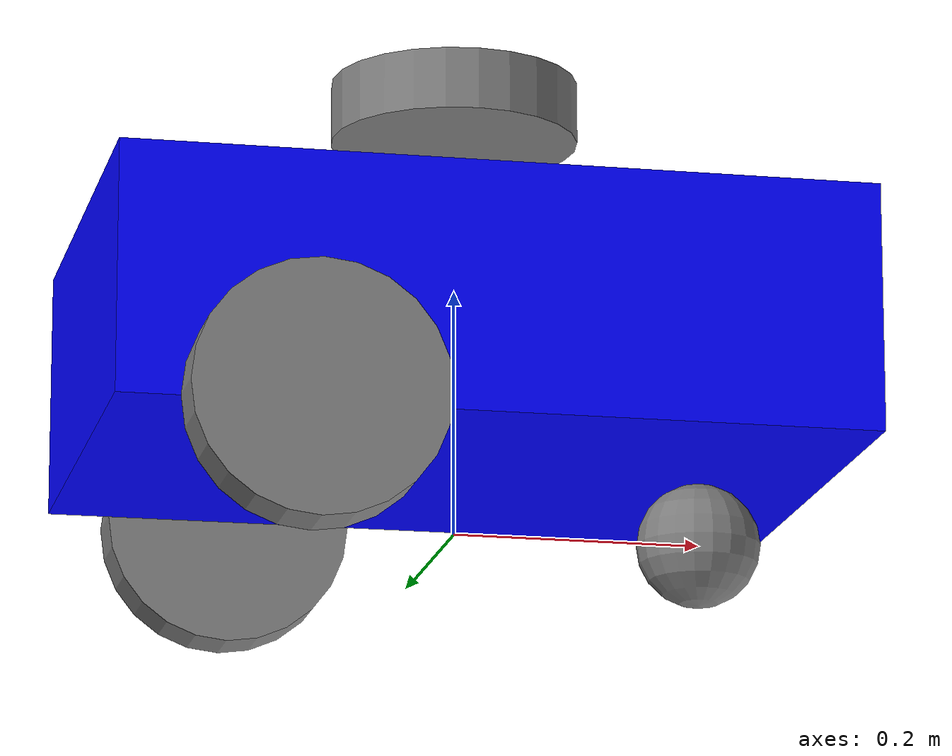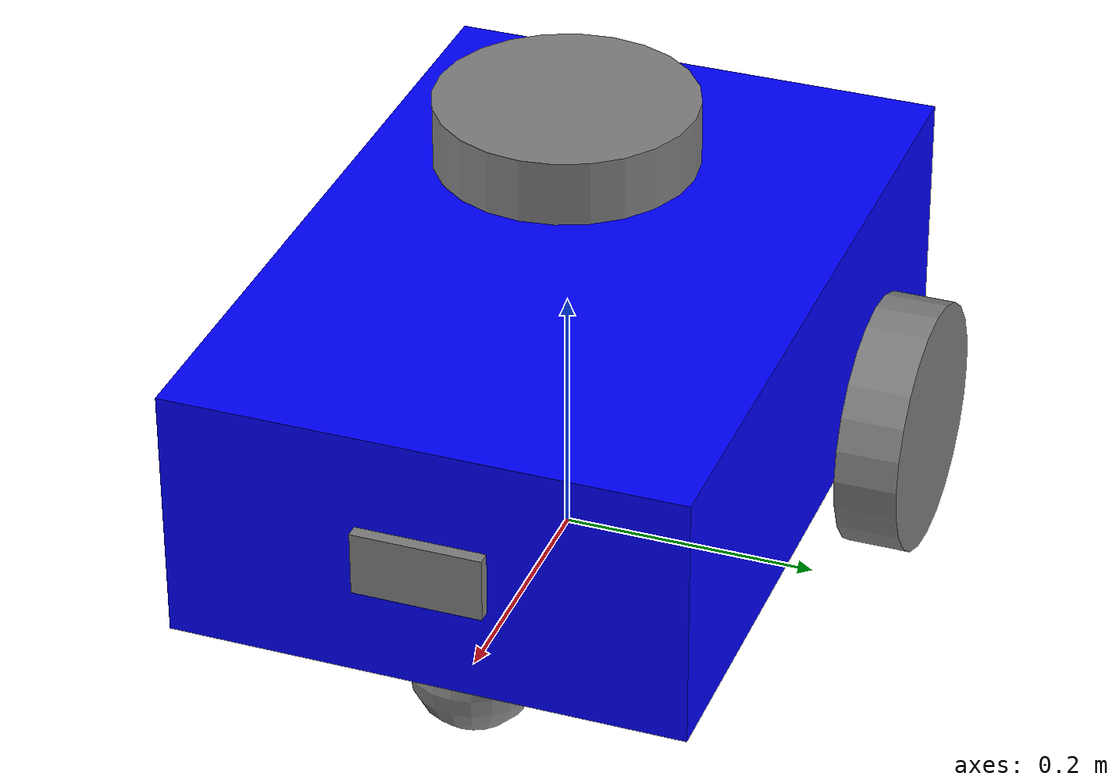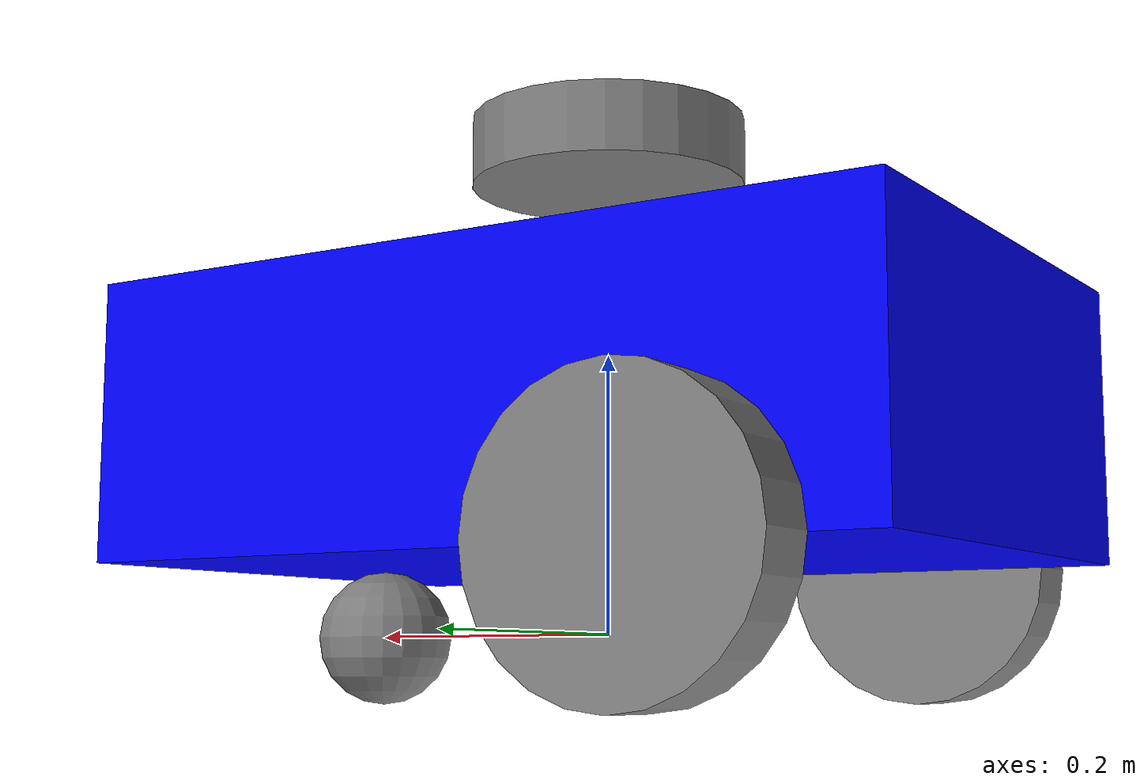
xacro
<?xml version="1.0"?>
<robot name="yolobot" xmlns:xacro="http://www.ros.org/wiki/xacro">

    <xacro:include filename="common_properties.xacro" />
    <xacro:include filename="mobile_base.xacro" />
    <xacro:include filename="mobile_base_gazebo.xacro" />

    <xacro:include filename="camera.xacro" />

</robot>

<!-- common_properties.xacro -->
<robot xmlns:xacro="http://www.ros.org/wiki/xacro">

    <material name="blue">
        <color rgba="0 0 1 1" />
    </material>

    <material name="gray">
        <color rgba="0.5 0.5 0.5 1" />
    </material>

    <xacro:macro name="box_inertia" params="m l w h xyz rpy">
        <inertial>
            <origin xyz="${xyz}" rpy="${rpy}" />
            <mass value="${m}" />
            <inertia ixx="${(m/12)*(h*h+l*l)}" ixy="0" ixz="0"
                     iyy="${(m/12)*(w*w+h*h)}" iyz="0"
                     izz="${(m/12)*(w*w+l*l)}" />
        </inertial>
    </xacro:macro>

    <xacro:macro name="wheel_inertia" params="m r l xyz rpy" >
        <inertial>
            <origin xyz="${xyz}" rpy="${rpy}" />
            <mass value="${m}" />
            <inertia ixx="${(m/12)*(3*r*r+l*l)}" ixy="0" ixz="0"
                     iyy="${(m/12)*(3*r*r+l*l)}" iyz="0"
                     izz="${(m*r*r)/2}" />
        </inertial>
    </xacro:macro>

    <xacro:macro name="caster_wheel_inertia" params="m r xyz rpy" >
        <inertial>
            <origin xyz="${xyz}" rpy="${rpy}" />
            <mass value="${m}" />
            <inertia ixx="${(2*m*r*r)/5}" ixy="0" ixz="0"
                      iyy="${(2*m*r*r)/5}" iyz="0"
                      izz="${(2*m*r*r)/5}" />
        </inertial>
    </xacro:macro>
</robot>

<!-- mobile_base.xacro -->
<robot xmlns:xacro="http://www.ros.org/wiki/xacro">

    <xacro:property name="base_length" value="0.6" />
    <xacro:property name="base_width" value="0.4" />
    <xacro:property name="base_height" value="0.2" />
    <xacro:property name="wheel_radius" value="0.1" />
    <xacro:property name="wheel_length" value = "0.05" />

    <link name="base_footprint" />

    <link name="base_link">
        <visual>
            <geometry>
                <box size="${base_length} ${base_width} ${base_height}" />
            </geometry>
            <origin xyz="0 0 ${base_height /2.0}" rpy="0 0 0" />
            <material name="blue" />
        </visual>
        <collision>
            <geometry>
                <box size="${base_length} ${base_width} ${base_height}" />
            </geometry>
            <origin xyz="0 0 ${base_height /2.0}" rpy="0 0 0" />
        </collision>
        <xacro:box_inertia m="5.0" l="${2*base_length}" w="${2*base_width}" h="${2*base_height}"
                           xyz="0 0 ${base_length /2.0}" rpy="0 0 0" />
    </link>

    <link name="base_scan">
        <visual>
            <geometry>
                <cylinder radius="${wheel_radius}" length="${wheel_length}"/>
            </geometry>
            <origin xyz="0 0 0.05" rpy="0 0 0" />
            <material name="gray" />
        </visual>
        <collision>
            <geometry>
                <cylinder radius="${wheel_radius}" length="${wheel_length}"/>
            </geometry>
            <origin xyz="0 0 0.05" rpy="0 0 0" />
        </collision>
        <xacro:wheel_inertia m="1.0" r="${2*wheel_radius / 2.0}" l="${2*wheel_length}" xyz="0 0 0" rpy="0 0 0" />
    </link>

    <xacro:macro name="wheel_link" params="prefix">
        <link name="${prefix}_wheel_link">
            <visual>
                <geometry>
                    <cylinder radius="${wheel_radius}" length="${wheel_length}" />
                </geometry>
                <origin xyz="0 0 0" rpy="${pi / 2.0} 0 0" />
                <material name="gray" />
            </visual>
            <collision>
                <geometry>
                    <cylinder radius="${wheel_radius}" length="${wheel_length}" />
                </geometry>
                <origin xyz="0 0 0" rpy="${pi / 2.0} 0 0" />
            </collision>
            <xacro:wheel_inertia m="3.0" r="${2*wheel_radius}" l="${2*wheel_length}" xyz="0 0 0" rpy="${pi / 2.0} 0 0" />
        </link>
    </xacro:macro>

    <xacro:wheel_link prefix="right" />
    <xacro:wheel_link prefix="left" />

    <link name="caster_wheel_link" >
        <visual>
            <geometry>
                <sphere radius="${wheel_radius / 2.0}" />
            </geometry>
            <origin xyz ="0 0 0" rpy="0 0 0" />
            <material name="gray" />
        </visual>
        <collision>
            <geometry>
                <sphere radius="${wheel_radius / 2.0}" />
            </geometry>
            <origin xyz ="0 0 0" rpy="0 0 0" />
        </collision>
        <xacro:caster_wheel_inertia m="1.0" r="${2*wheel_radius / 2.0}" xyz="0 0 0" rpy="0 0 0" />
    </link>

    <joint name="base_right_wheel_joint" type="continuous">
        <parent link="base_link" />
        <child link="right_wheel_link" />
        <origin xyz="${-base_length / 4.0} ${(-base_width / 2) + (-wheel_length / 2)} 0" rpy="0 0 0" />
        <axis xyz="0 1 0" />
    </joint>

    <joint name="base_left_wheel_joint" type="continuous">
        <parent link ="base_link" />
        <child link ="left_wheel_link" />
        <origin xyz ="${-base_length /4} ${(base_width / 2) + (wheel_length / 2)} 0" rpy ="0 0 0" />
        <axis xyz = "0 1 0" />
    </joint>

    <joint name="base_caster_wheel_joint" type = "fixed">
        <parent link ="base_link" />
        <child link = "caster_wheel_link" />
        <origin xyz = "${base_length / 3.0} 0 ${-wheel_radius / 2}" rpy = "0 0 0" />
    </joint>

    <joint name="base_joint" type="fixed">
        <parent link ="base_footprint" />
        <child link = "base_link" />
        <origin xyz="0 0 ${wheel_radius / 2}" rpy="0 0 0 " />
    </joint>

    <joint name="base_scan_joint" type="fixed">
        <parent link="base_link"/>
        <child link="base_scan"/>
        <origin xyz="0 0 ${base_height+0.05}" rpy="0 0 0"/>
    </joint>

</robot>

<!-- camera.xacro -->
<robot xmlns:xacro="http://www.ros.org/wiki/xacro">

    <xacro:property name="camera_length" value="0.01" />
    <xacro:property name="camera_width" value="0.1" />
    <xacro:property name="camera_height" value="0.05" />

    <link name="camera_link">
        <visual>
            <geometry>
                <box size="${camera_length} ${camera_width} ${camera_height}" />
            </geometry>
            <material name="gray" />
        </visual>
        <collision>
            <geometry>
                <box size="${camera_length} ${camera_width} ${camera_height}" />
            </geometry>
        </collision>
        <xacro:box_inertia m="0.1" l="${camera_length}" w="${camera_width}" h="${camera_height}"
                           xyz="0 0 0" rpy="0 0 0" />
    </link>

    <link name="camera_link_optical">
    </link>

    <joint name="base_camera_joint" type="fixed" >
        <parent link="base_link" />
        <child link="camera_link" />
        <origin xyz="${0.3 +(camera_length /2.0)} 0 0.1" rpy="0 0 0" />
    </joint>

    <joint name="camera_optical_joint" type="fixed">
        <origin xyz="0 0 0" rpy="${-pi/2} 0 ${-pi/2}" />
        <parent link="camera_link" />
        <child link="camera_link_optical" />c
    </joint>

    <gazebo reference="camera_link">
        <material>Gazebo/Red</material>
        <sensor name="camera_sensor" type="depth" >
            <pose>0 0 0 0 0 0 </pose>
            <image>
             <width>640</width>
             <height>480</height>
             <format>R8G8B8</format>
            </image>
            <clip>
                <near>0.005</near>
                <far>20.0</far>
            </clip>
            <update_rate>20.0</update_rate>
            <plugin name="camera_controller" filename="libgazebo_ros_camera.so">
                <frame_name>camera_link_optical</frame_name>

            </plugin>
        </sensor>

    </gazebo>
</robot>
